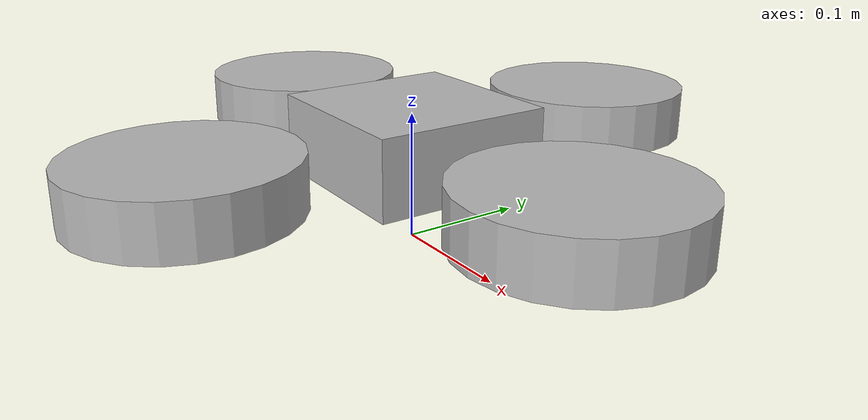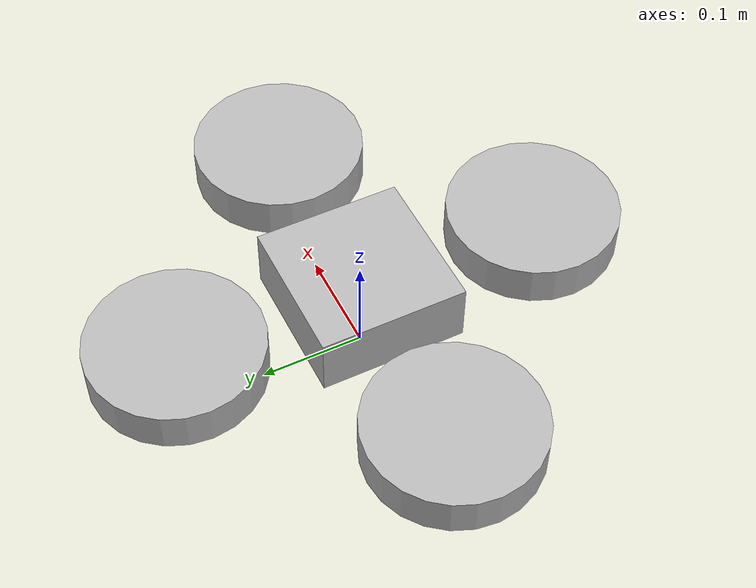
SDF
<?xml version="1.0" ?>
<sdf version="1.6">
  <model name="evolved_shield_sentinel_v3">
    <pose>0 0 0.08 0 0 0</pose>
    <static>false</static>
    <link name="base_link">
      <inertial>
        <mass>0.880</mass>
        <inertia>
          <ixx>0.006805</ixx>
          <iyy>0.006805</iyy>
          <izz>0.011499</izz>
        </inertia>
      </inertial>
      <visual name="body_visual">
        <geometry>
          <box><size>0.14 0.14 0.06</size></box>
        </geometry>
      </visual>
      <collision name="body_collision">
        <geometry>
          <box><size>0.14 0.14 0.06</size></box>
        </geometry>
      </collision>
      <sensor name="lidar_360" type="ray">
        <pose>0 0 0.05 0 0 0</pose>
        <ray>
          <scan>
            <horizontal>
              <samples>360</samples>
              <resolution>1</resolution>
              <min_angle>-3.14159</min_angle>
              <max_angle>3.14159</max_angle>
            </horizontal>
          </scan>
          <range>
            <min>0.10</min>
            <max>12.0</max>
          </range>
        </ray>
      </sensor>
      <sensor name="optical_flow_ground" type="camera">
        <pose>0 0 -0.04 0 1.5707 0</pose>
        <camera>
          <horizontal_fov>1.047</horizontal_fov>
          <image>
            <width>320</width>
            <height>240</height>
          </image>
        </camera>
      </sensor>
    </link>

    <link name="arm_1">
      <pose>0.1800 0.0000 0 0 0 0</pose>
      <collision name="duct_bumper_1_collision">
        <geometry>
          <cylinder>
            <radius>0.082</radius>
            <length>0.040</length>
          </cylinder>
        </geometry>
      </collision>
      <visual name="duct_bumper_1_visual">
        <geometry>
          <cylinder>
            <radius>0.082</radius>
            <length>0.040</length>
          </cylinder>
        </geometry>
      </visual>
    </link>
    <joint name="joint_arm_1" type="fixed">
      <parent>base_link</parent>
      <child>arm_1</child>
    </joint>

    <link name="arm_2">
      <pose>0.0000 0.1800 0 0 0 0</pose>
      <collision name="duct_bumper_2_collision">
        <geometry>
          <cylinder>
            <radius>0.082</radius>
            <length>0.040</length>
          </cylinder>
        </geometry>
      </collision>
      <visual name="duct_bumper_2_visual">
        <geometry>
          <cylinder>
            <radius>0.082</radius>
            <length>0.040</length>
          </cylinder>
        </geometry>
      </visual>
    </link>
    <joint name="joint_arm_2" type="fixed">
      <parent>base_link</parent>
      <child>arm_2</child>
    </joint>

    <link name="arm_3">
      <pose>-0.1800 0.0000 0 0 0 0</pose>
      <collision name="duct_bumper_3_collision">
        <geometry>
          <cylinder>
            <radius>0.082</radius>
            <length>0.040</length>
          </cylinder>
        </geometry>
      </collision>
      <visual name="duct_bumper_3_visual">
        <geometry>
          <cylinder>
            <radius>0.082</radius>
            <length>0.040</length>
          </cylinder>
        </geometry>
      </visual>
    </link>
    <joint name="joint_arm_3" type="fixed">
      <parent>base_link</parent>
      <child>arm_3</child>
    </joint>

    <link name="arm_4">
      <pose>-0.0000 -0.1800 0 0 0 0</pose>
      <collision name="duct_bumper_4_collision">
        <geometry>
          <cylinder>
            <radius>0.082</radius>
            <length>0.040</length>
          </cylinder>
        </geometry>
      </collision>
      <visual name="duct_bumper_4_visual">
        <geometry>
          <cylinder>
            <radius>0.082</radius>
            <length>0.040</length>
          </cylinder>
        </geometry>
      </visual>
    </link>
    <joint name="joint_arm_4" type="fixed">
      <parent>base_link</parent>
      <child>arm_4</child>
    </joint>

    <plugin name="px4_multirotor_dynamics" filename="libgazebo_multirotor_dynamics_plugin.so">
      <robotNamespace>evolved_shield_sentinel_v3</robotNamespace>
      <copilotVirtualBumperEnabled>true</copilotVirtualBumperEnabled>
      <virtualRepulsionDistance>0.50</virtualRepulsionDistance>
    </plugin>
  </model>
</sdf>
